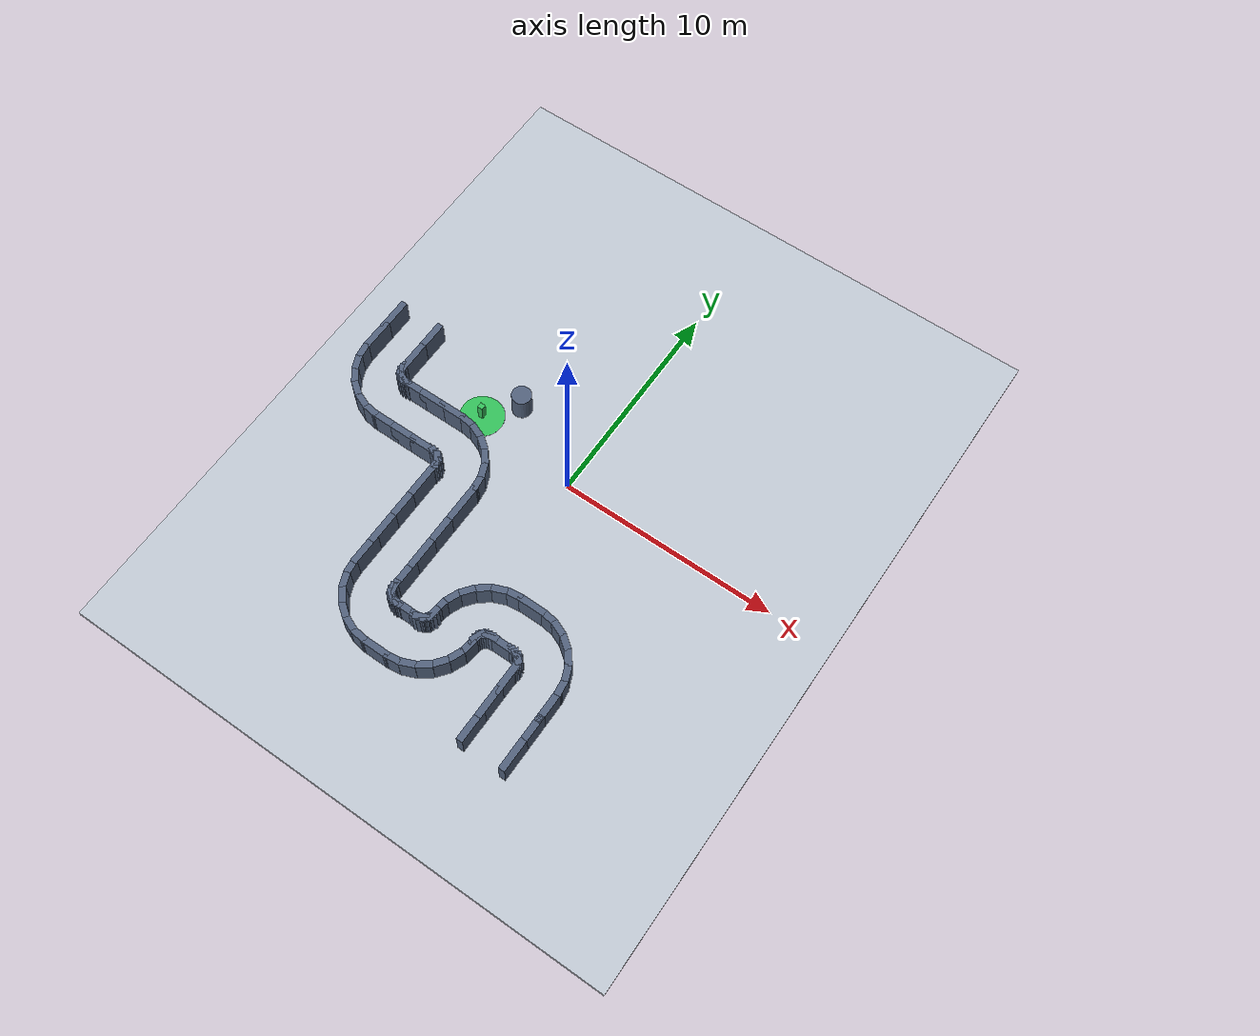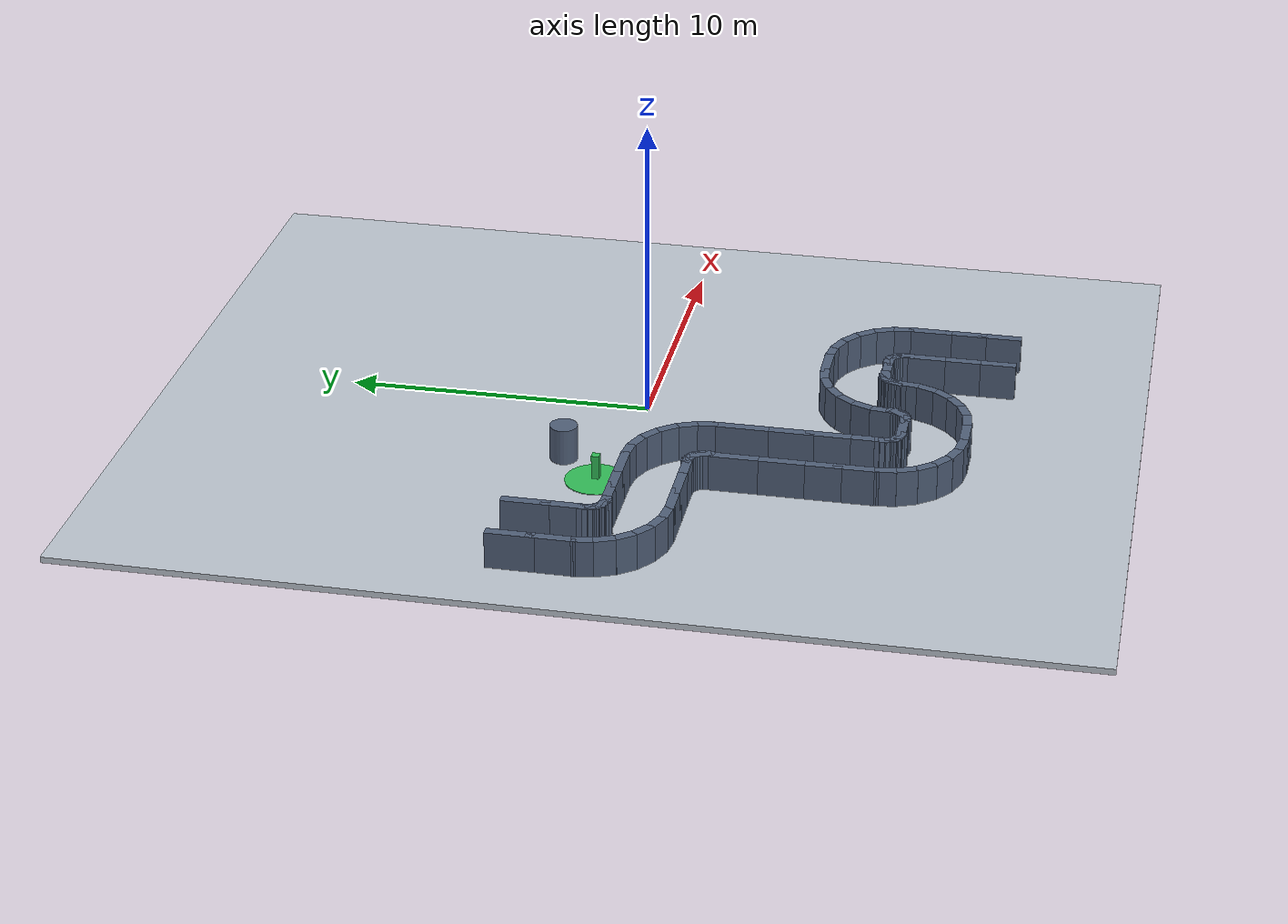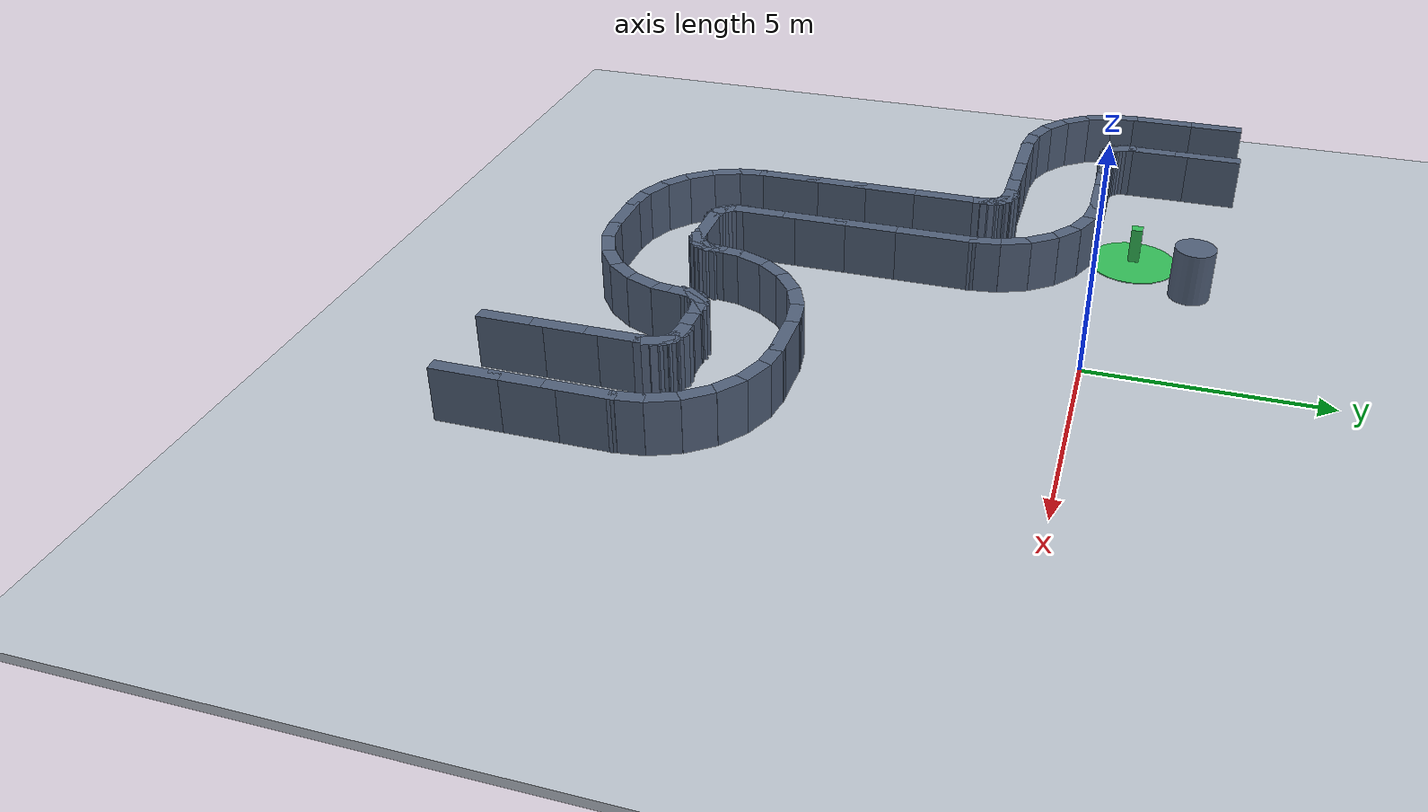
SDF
<sdf version="1.6">
 <world name="merged_maze">
  <model name="ground_plane">
   <static>true</static>
   <pose>0 0 -0.1 0 0 0</pose>
   <link name="link">
    <collision name="collision">
     <geometry><box><size>25.9198 32.2599 0.2</size></box></geometry>
     <surface><friction><ode><mu>1</mu><mu2>1</mu2></ode></friction></surface>
    </collision>
    <visual name="visual">
     <geometry><box><size>25.9198 32.2599 0.2</size></box></geometry>
     <material><ambient>0.75 0.78 0.82 1</ambient><diffuse>0.75 0.78 0.82 1</diffuse></material>
    </visual>
   </link>
  </model>
  <model name="maze_6_L_big">
   <static>true</static>
   <link name="w00">
    <pose>-8.8 2.0451 0.6 0 0 -1.5708</pose>
    <collision name="collision"><geometry><box><size>1.55 0.3 1.2</size></box></geometry></collision>
    <visual name="visual">
     <geometry><box><size>1.55 0.3 1.2</size></box></geometry>
     <material><ambient>0.32 0.38 0.48 1</ambient><diffuse>0.32 0.38 0.48 1</diffuse></material>
    </visual>
   </link>
   <link name="w01">
    <pose>-10.8 2.0451 0.6 0 0 -1.5708</pose>
    <collision name="collision"><geometry><box><size>1.55 0.3 1.2</size></box></geometry></collision>
    <visual name="visual">
     <geometry><box><size>1.55 0.3 1.2</size></box></geometry>
     <material><ambient>0.32 0.38 0.48 1</ambient><diffuse>0.32 0.38 0.48 1</diffuse></material>
    </visual>
   </link>
   <link name="w02">
    <pose>-8.8 0.7951 0.6 0 0 -1.5708</pose>
    <collision name="collision"><geometry><box><size>1.55 0.3 1.2</size></box></geometry></collision>
    <visual name="visual">
     <geometry><box><size>1.55 0.3 1.2</size></box></geometry>
     <material><ambient>0.32 0.38 0.48 1</ambient><diffuse>0.32 0.38 0.48 1</diffuse></material>
    </visual>
   </link>
   <link name="w03">
    <pose>-10.8 0.7951 0.6 0 0 -1.5708</pose>
    <collision name="collision"><geometry><box><size>1.55 0.3 1.2</size></box></geometry></collision>
    <visual name="visual">
     <geometry><box><size>1.55 0.3 1.2</size></box></geometry>
     <material><ambient>0.32 0.38 0.48 1</ambient><diffuse>0.32 0.38 0.48 1</diffuse></material>
    </visual>
   </link>
   <link name="w04">
    <pose>-8.783 0.1061 0.6 0 0 -1.4399</pose>
    <collision name="collision"><geometry><box><size>0.692 0.3 1.2</size></box></geometry></collision>
    <visual name="visual">
     <geometry><box><size>0.692 0.3 1.2</size></box></geometry>
     <material><ambient>0.32 0.38 0.48 1</ambient><diffuse>0.32 0.38 0.48 1</diffuse></material>
    </visual>
   </link>
   <link name="w05">
    <pose>-10.766 -0.1549 0.6 0 0 -1.4399</pose>
    <collision name="collision"><geometry><box><size>0.692 0.3 1.2</size></box></geometry></collision>
    <visual name="visual">
     <geometry><box><size>0.692 0.3 1.2</size></box></geometry>
     <material><ambient>0.32 0.38 0.48 1</ambient><diffuse>0.32 0.38 0.48 1</diffuse></material>
    </visual>
   </link>
   <link name="w06">
    <pose>-8.75 -0.0159 0.6 0 0 -1.1781</pose>
    <collision name="collision"><geometry><box><size>0.692 0.3 1.2</size></box></geometry></collision>
    <visual name="visual">
     <geometry><box><size>0.692 0.3 1.2</size></box></geometry>
     <material><ambient>0.32 0.38 0.48 1</ambient><diffuse>0.32 0.38 0.48 1</diffuse></material>
    </visual>
   </link>
   <link name="w07">
    <pose>-10.598 -0.7819 0.6 0 0 -1.1781</pose>
    <collision name="collision"><geometry><box><size>0.692 0.3 1.2</size></box></geometry></collision>
    <visual name="visual">
     <geometry><box><size>0.692 0.3 1.2</size></box></geometry>
     <material><ambient>0.32 0.38 0.48 1</ambient><diffuse>0.32 0.38 0.48 1</diffuse></material>
    </visual>
   </link>
   <link name="w08">
    <pose>-8.686 -0.1269 0.6 0 0 -0.9163</pose>
    <collision name="collision"><geometry><box><size>0.692 0.3 1.2</size></box></geometry></collision>
    <visual name="visual">
     <geometry><box><size>0.692 0.3 1.2</size></box></geometry>
     <material><ambient>0.32 0.38 0.48 1</ambient><diffuse>0.32 0.38 0.48 1</diffuse></material>
    </visual>
   </link>
   <link name="w09">
    <pose>-10.273 -1.3439 0.6 0 0 -0.9163</pose>
    <collision name="collision"><geometry><box><size>0.692 0.3 1.2</size></box></geometry></collision>
    <visual name="visual">
     <geometry><box><size>0.692 0.3 1.2</size></box></geometry>
     <material><ambient>0.32 0.38 0.48 1</ambient><diffuse>0.32 0.38 0.48 1</diffuse></material>
    </visual>
   </link>
   <link name="w10">
    <pose>-8.597 -0.2159 0.6 0 0 -0.6545</pose>
    <collision name="collision"><geometry><box><size>0.692 0.3 1.2</size></box></geometry></collision>
    <visual name="visual">
     <geometry><box><size>0.692 0.3 1.2</size></box></geometry>
     <material><ambient>0.32 0.38 0.48 1</ambient><diffuse>0.32 0.38 0.48 1</diffuse></material>
    </visual>
   </link>
   <link name="w11">
    <pose>-9.814 -1.8029 0.6 0 0 -0.6545</pose>
    <collision name="collision"><geometry><box><size>0.692 0.3 1.2</size></box></geometry></collision>
    <visual name="visual">
     <geometry><box><size>0.692 0.3 1.2</size></box></geometry>
     <material><ambient>0.32 0.38 0.48 1</ambient><diffuse>0.32 0.38 0.48 1</diffuse></material>
    </visual>
   </link>
   <link name="w12">
    <pose>-8.486 -0.2799 0.6 0 0 -0.3927</pose>
    <collision name="collision"><geometry><box><size>0.692 0.3 1.2</size></box></geometry></collision>
    <visual name="visual">
     <geometry><box><size>0.692 0.3 1.2</size></box></geometry>
     <material><ambient>0.32 0.38 0.48 1</ambient><diffuse>0.32 0.38 0.48 1</diffuse></material>
    </visual>
   </link>
   <link name="w13">
    <pose>-9.252 -2.1279 0.6 0 0 -0.3927</pose>
    <collision name="collision"><geometry><box><size>0.692 0.3 1.2</size></box></geometry></collision>
    <visual name="visual">
     <geometry><box><size>0.692 0.3 1.2</size></box></geometry>
     <material><ambient>0.32 0.38 0.48 1</ambient><diffuse>0.32 0.38 0.48 1</diffuse></material>
    </visual>
   </link>
   <link name="w14">
    <pose>-8.364 -0.3129 0.6 0 0 -0.1309</pose>
    <collision name="collision"><geometry><box><size>0.692 0.3 1.2</size></box></geometry></collision>
    <visual name="visual">
     <geometry><box><size>0.692 0.3 1.2</size></box></geometry>
     <material><ambient>0.32 0.38 0.48 1</ambient><diffuse>0.32 0.38 0.48 1</diffuse></material>
    </visual>
   </link>
   <link name="w15">
    <pose>-8.625 -2.2959 0.6 0 0 -0.1309</pose>
    <collision name="collision"><geometry><box><size>0.692 0.3 1.2</size></box></geometry></collision>
    <visual name="visual">
     <geometry><box><size>0.692 0.3 1.2</size></box></geometry>
     <material><ambient>0.32 0.38 0.48 1</ambient><diffuse>0.32 0.38 0.48 1</diffuse></material>
    </visual>
   </link>
   <link name="w16">
    <pose>-7.8 -0.3299 0.6 0 0 0</pose>
    <collision name="collision"><geometry><box><size>1.3 0.3 1.2</size></box></geometry></collision>
    <visual name="visual">
     <geometry><box><size>1.3 0.3 1.2</size></box></geometry>
     <material><ambient>0.32 0.38 0.48 1</ambient><diffuse>0.32 0.38 0.48 1</diffuse></material>
    </visual>
   </link>
   <link name="w17">
    <pose>-7.8 -2.3299 0.6 0 0 0</pose>
    <collision name="collision"><geometry><box><size>1.3 0.3 1.2</size></box></geometry></collision>
    <visual name="visual">
     <geometry><box><size>1.3 0.3 1.2</size></box></geometry>
     <material><ambient>0.32 0.38 0.48 1</ambient><diffuse>0.32 0.38 0.48 1</diffuse></material>
    </visual>
   </link>
   <link name="w18">
    <pose>-6.8 -0.3299 0.6 0 0 0</pose>
    <collision name="collision"><geometry><box><size>1.3 0.3 1.2</size></box></geometry></collision>
    <visual name="visual">
     <geometry><box><size>1.3 0.3 1.2</size></box></geometry>
     <material><ambient>0.32 0.38 0.48 1</ambient><diffuse>0.32 0.38 0.48 1</diffuse></material>
    </visual>
   </link>
   <link name="w19">
    <pose>-6.8 -2.3299 0.6 0 0 0</pose>
    <collision name="collision"><geometry><box><size>1.3 0.3 1.2</size></box></geometry></collision>
    <visual name="visual">
     <geometry><box><size>1.3 0.3 1.2</size></box></geometry>
     <material><ambient>0.32 0.38 0.48 1</ambient><diffuse>0.32 0.38 0.48 1</diffuse></material>
    </visual>
   </link>
   <link name="w20">
    <pose>-5.8 -0.3299 0.6 0 0 0</pose>
    <collision name="collision"><geometry><box><size>1.3 0.3 1.2</size></box></geometry></collision>
    <visual name="visual">
     <geometry><box><size>1.3 0.3 1.2</size></box></geometry>
     <material><ambient>0.32 0.38 0.48 1</ambient><diffuse>0.32 0.38 0.48 1</diffuse></material>
    </visual>
   </link>
   <link name="w21">
    <pose>-5.8 -2.3299 0.6 0 0 0</pose>
    <collision name="collision"><geometry><box><size>1.3 0.3 1.2</size></box></geometry></collision>
    <visual name="visual">
     <geometry><box><size>1.3 0.3 1.2</size></box></geometry>
     <material><ambient>0.32 0.38 0.48 1</ambient><diffuse>0.32 0.38 0.48 1</diffuse></material>
    </visual>
   </link>
   <link name="w22">
    <pose>-4.975 -0.3639 0.6 0 0 -0.1309</pose>
    <collision name="collision"><geometry><box><size>0.692 0.3 1.2</size></box></geometry></collision>
    <visual name="visual">
     <geometry><box><size>0.692 0.3 1.2</size></box></geometry>
     <material><ambient>0.32 0.38 0.48 1</ambient><diffuse>0.32 0.38 0.48 1</diffuse></material>
    </visual>
   </link>
   <link name="w23">
    <pose>-5.236 -2.3469 0.6 0 0 -0.1309</pose>
    <collision name="collision"><geometry><box><size>0.692 0.3 1.2</size></box></geometry></collision>
    <visual name="visual">
     <geometry><box><size>0.692 0.3 1.2</size></box></geometry>
     <material><ambient>0.32 0.38 0.48 1</ambient><diffuse>0.32 0.38 0.48 1</diffuse></material>
    </visual>
   </link>
   <link name="w24">
    <pose>-4.348 -0.5319 0.6 0 0 -0.3927</pose>
    <collision name="collision"><geometry><box><size>0.692 0.3 1.2</size></box></geometry></collision>
    <visual name="visual">
     <geometry><box><size>0.692 0.3 1.2</size></box></geometry>
     <material><ambient>0.32 0.38 0.48 1</ambient><diffuse>0.32 0.38 0.48 1</diffuse></material>
    </visual>
   </link>
   <link name="w25">
    <pose>-5.114 -2.3799 0.6 0 0 -0.3927</pose>
    <collision name="collision"><geometry><box><size>0.692 0.3 1.2</size></box></geometry></collision>
    <visual name="visual">
     <geometry><box><size>0.692 0.3 1.2</size></box></geometry>
     <material><ambient>0.32 0.38 0.48 1</ambient><diffuse>0.32 0.38 0.48 1</diffuse></material>
    </visual>
   </link>
   <link name="w26">
    <pose>-3.786 -0.8569 0.6 0 0 -0.6545</pose>
    <collision name="collision"><geometry><box><size>0.692 0.3 1.2</size></box></geometry></collision>
    <visual name="visual">
     <geometry><box><size>0.692 0.3 1.2</size></box></geometry>
     <material><ambient>0.32 0.38 0.48 1</ambient><diffuse>0.32 0.38 0.48 1</diffuse></material>
    </visual>
   </link>
   <link name="w27">
    <pose>-5.003 -2.4439 0.6 0 0 -0.6545</pose>
    <collision name="collision"><geometry><box><size>0.692 0.3 1.2</size></box></geometry></collision>
    <visual name="visual">
     <geometry><box><size>0.692 0.3 1.2</size></box></geometry>
     <material><ambient>0.32 0.38 0.48 1</ambient><diffuse>0.32 0.38 0.48 1</diffuse></material>
    </visual>
   </link>
   <link name="w28">
    <pose>-3.327 -1.3159 0.6 0 0 -0.9163</pose>
    <collision name="collision"><geometry><box><size>0.692 0.3 1.2</size></box></geometry></collision>
    <visual name="visual">
     <geometry><box><size>0.692 0.3 1.2</size></box></geometry>
     <material><ambient>0.32 0.38 0.48 1</ambient><diffuse>0.32 0.38 0.48 1</diffuse></material>
    </visual>
   </link>
   <link name="w29">
    <pose>-4.914 -2.5329 0.6 0 0 -0.9163</pose>
    <collision name="collision"><geometry><box><size>0.692 0.3 1.2</size></box></geometry></collision>
    <visual name="visual">
     <geometry><box><size>0.692 0.3 1.2</size></box></geometry>
     <material><ambient>0.32 0.38 0.48 1</ambient><diffuse>0.32 0.38 0.48 1</diffuse></material>
    </visual>
   </link>
   <link name="w30">
    <pose>-3.002 -1.8779 0.6 0 0 -1.1781</pose>
    <collision name="collision"><geometry><box><size>0.692 0.3 1.2</size></box></geometry></collision>
    <visual name="visual">
     <geometry><box><size>0.692 0.3 1.2</size></box></geometry>
     <material><ambient>0.32 0.38 0.48 1</ambient><diffuse>0.32 0.38 0.48 1</diffuse></material>
    </visual>
   </link>
   <link name="w31">
    <pose>-4.85 -2.6439 0.6 0 0 -1.1781</pose>
    <collision name="collision"><geometry><box><size>0.692 0.3 1.2</size></box></geometry></collision>
    <visual name="visual">
     <geometry><box><size>0.692 0.3 1.2</size></box></geometry>
     <material><ambient>0.32 0.38 0.48 1</ambient><diffuse>0.32 0.38 0.48 1</diffuse></material>
    </visual>
   </link>
   <link name="w32">
    <pose>-2.834 -2.5049 0.6 0 0 -1.4399</pose>
    <collision name="collision"><geometry><box><size>0.692 0.3 1.2</size></box></geometry></collision>
    <visual name="visual">
     <geometry><box><size>0.692 0.3 1.2</size></box></geometry>
     <material><ambient>0.32 0.38 0.48 1</ambient><diffuse>0.32 0.38 0.48 1</diffuse></material>
    </visual>
   </link>
   <link name="w33">
    <pose>-4.817 -2.7659 0.6 0 0 -1.4399</pose>
    <collision name="collision"><geometry><box><size>0.692 0.3 1.2</size></box></geometry></collision>
    <visual name="visual">
     <geometry><box><size>0.692 0.3 1.2</size></box></geometry>
     <material><ambient>0.32 0.38 0.48 1</ambient><diffuse>0.32 0.38 0.48 1</diffuse></material>
    </visual>
   </link>
   <link name="w34">
    <pose>-2.8 -3.5799 0.6 0 0 -1.5708</pose>
    <collision name="collision"><geometry><box><size>1.8 0.3 1.2</size></box></geometry></collision>
    <visual name="visual">
     <geometry><box><size>1.8 0.3 1.2</size></box></geometry>
     <material><ambient>0.32 0.38 0.48 1</ambient><diffuse>0.32 0.38 0.48 1</diffuse></material>
    </visual>
   </link>
   <link name="w35">
    <pose>-4.8 -3.5799 0.6 0 0 -1.5708</pose>
    <collision name="collision"><geometry><box><size>1.8 0.3 1.2</size></box></geometry></collision>
    <visual name="visual">
     <geometry><box><size>1.8 0.3 1.2</size></box></geometry>
     <material><ambient>0.32 0.38 0.48 1</ambient><diffuse>0.32 0.38 0.48 1</diffuse></material>
    </visual>
   </link>
  </model>
  <model name="maze_7_S">
   <static>true</static>
   <link name="w00">
    <pose>-2.8 -5.2129 0.6 0 0 -1.5708</pose>
    <collision name="collision"><geometry><box><size>1.467 0.3 1.2</size></box></geometry></collision>
    <visual name="visual">
     <geometry><box><size>1.467 0.3 1.2</size></box></geometry>
     <material><ambient>0.32 0.38 0.48 1</ambient><diffuse>0.32 0.38 0.48 1</diffuse></material>
    </visual>
   </link>
   <link name="w01">
    <pose>-4.8 -5.2129 0.6 0 0 -1.5708</pose>
    <collision name="collision"><geometry><box><size>1.467 0.3 1.2</size></box></geometry></collision>
    <visual name="visual">
     <geometry><box><size>1.467 0.3 1.2</size></box></geometry>
     <material><ambient>0.32 0.38 0.48 1</ambient><diffuse>0.32 0.38 0.48 1</diffuse></material>
    </visual>
   </link>
   <link name="w02">
    <pose>-2.8 -6.3799 0.6 0 0 -1.5708</pose>
    <collision name="collision"><geometry><box><size>1.467 0.3 1.2</size></box></geometry></collision>
    <visual name="visual">
     <geometry><box><size>1.467 0.3 1.2</size></box></geometry>
     <material><ambient>0.32 0.38 0.48 1</ambient><diffuse>0.32 0.38 0.48 1</diffuse></material>
    </visual>
   </link>
   <link name="w03">
    <pose>-4.8 -6.3799 0.6 0 0 -1.5708</pose>
    <collision name="collision"><geometry><box><size>1.467 0.3 1.2</size></box></geometry></collision>
    <visual name="visual">
     <geometry><box><size>1.467 0.3 1.2</size></box></geometry>
     <material><ambient>0.32 0.38 0.48 1</ambient><diffuse>0.32 0.38 0.48 1</diffuse></material>
    </visual>
   </link>
   <link name="w04">
    <pose>-2.8 -7.5469 0.6 0 0 -1.5708</pose>
    <collision name="collision"><geometry><box><size>1.467 0.3 1.2</size></box></geometry></collision>
    <visual name="visual">
     <geometry><box><size>1.467 0.3 1.2</size></box></geometry>
     <material><ambient>0.32 0.38 0.48 1</ambient><diffuse>0.32 0.38 0.48 1</diffuse></material>
    </visual>
   </link>
   <link name="w05">
    <pose>-4.8 -7.5469 0.6 0 0 -1.5708</pose>
    <collision name="collision"><geometry><box><size>1.467 0.3 1.2</size></box></geometry></collision>
    <visual name="visual">
     <geometry><box><size>1.467 0.3 1.2</size></box></geometry>
     <material><ambient>0.32 0.38 0.48 1</ambient><diffuse>0.32 0.38 0.48 1</diffuse></material>
    </visual>
   </link>
   <link name="w06">
    <pose>-2.783 -8.1939 0.6 0 0 -1.4399</pose>
    <collision name="collision"><geometry><box><size>0.692 0.3 1.2</size></box></geometry></collision>
    <visual name="visual">
     <geometry><box><size>0.692 0.3 1.2</size></box></geometry>
     <material><ambient>0.32 0.38 0.48 1</ambient><diffuse>0.32 0.38 0.48 1</diffuse></material>
    </visual>
   </link>
   <link name="w07">
    <pose>-4.766 -8.4549 0.6 0 0 -1.4399</pose>
    <collision name="collision"><geometry><box><size>0.692 0.3 1.2</size></box></geometry></collision>
    <visual name="visual">
     <geometry><box><size>0.692 0.3 1.2</size></box></geometry>
     <material><ambient>0.32 0.38 0.48 1</ambient><diffuse>0.32 0.38 0.48 1</diffuse></material>
    </visual>
   </link>
   <link name="w08">
    <pose>-2.75 -8.3159 0.6 0 0 -1.1781</pose>
    <collision name="collision"><geometry><box><size>0.692 0.3 1.2</size></box></geometry></collision>
    <visual name="visual">
     <geometry><box><size>0.692 0.3 1.2</size></box></geometry>
     <material><ambient>0.32 0.38 0.48 1</ambient><diffuse>0.32 0.38 0.48 1</diffuse></material>
    </visual>
   </link>
   <link name="w09">
    <pose>-4.598 -9.0819 0.6 0 0 -1.1781</pose>
    <collision name="collision"><geometry><box><size>0.692 0.3 1.2</size></box></geometry></collision>
    <visual name="visual">
     <geometry><box><size>0.692 0.3 1.2</size></box></geometry>
     <material><ambient>0.32 0.38 0.48 1</ambient><diffuse>0.32 0.38 0.48 1</diffuse></material>
    </visual>
   </link>
   <link name="w10">
    <pose>-2.686 -8.4269 0.6 0 0 -0.9163</pose>
    <collision name="collision"><geometry><box><size>0.692 0.3 1.2</size></box></geometry></collision>
    <visual name="visual">
     <geometry><box><size>0.692 0.3 1.2</size></box></geometry>
     <material><ambient>0.32 0.38 0.48 1</ambient><diffuse>0.32 0.38 0.48 1</diffuse></material>
    </visual>
   </link>
   <link name="w11">
    <pose>-4.273 -9.6439 0.6 0 0 -0.9163</pose>
    <collision name="collision"><geometry><box><size>0.692 0.3 1.2</size></box></geometry></collision>
    <visual name="visual">
     <geometry><box><size>0.692 0.3 1.2</size></box></geometry>
     <material><ambient>0.32 0.38 0.48 1</ambient><diffuse>0.32 0.38 0.48 1</diffuse></material>
    </visual>
   </link>
   <link name="w12">
    <pose>-2.597 -8.5159 0.6 0 0 -0.6545</pose>
    <collision name="collision"><geometry><box><size>0.692 0.3 1.2</size></box></geometry></collision>
    <visual name="visual">
     <geometry><box><size>0.692 0.3 1.2</size></box></geometry>
     <material><ambient>0.32 0.38 0.48 1</ambient><diffuse>0.32 0.38 0.48 1</diffuse></material>
    </visual>
   </link>
   <link name="w13">
    <pose>-3.814 -10.1029 0.6 0 0 -0.6545</pose>
    <collision name="collision"><geometry><box><size>0.692 0.3 1.2</size></box></geometry></collision>
    <visual name="visual">
     <geometry><box><size>0.692 0.3 1.2</size></box></geometry>
     <material><ambient>0.32 0.38 0.48 1</ambient><diffuse>0.32 0.38 0.48 1</diffuse></material>
    </visual>
   </link>
   <link name="w14">
    <pose>-2.486 -8.5799 0.6 0 0 -0.3927</pose>
    <collision name="collision"><geometry><box><size>0.692 0.3 1.2</size></box></geometry></collision>
    <visual name="visual">
     <geometry><box><size>0.692 0.3 1.2</size></box></geometry>
     <material><ambient>0.32 0.38 0.48 1</ambient><diffuse>0.32 0.38 0.48 1</diffuse></material>
    </visual>
   </link>
   <link name="w15">
    <pose>-3.252 -10.4279 0.6 0 0 -0.3927</pose>
    <collision name="collision"><geometry><box><size>0.692 0.3 1.2</size></box></geometry></collision>
    <visual name="visual">
     <geometry><box><size>0.692 0.3 1.2</size></box></geometry>
     <material><ambient>0.32 0.38 0.48 1</ambient><diffuse>0.32 0.38 0.48 1</diffuse></material>
    </visual>
   </link>
   <link name="w16">
    <pose>-2.364 -8.6129 0.6 0 0 -0.1309</pose>
    <collision name="collision"><geometry><box><size>0.692 0.3 1.2</size></box></geometry></collision>
    <visual name="visual">
     <geometry><box><size>0.692 0.3 1.2</size></box></geometry>
     <material><ambient>0.32 0.38 0.48 1</ambient><diffuse>0.32 0.38 0.48 1</diffuse></material>
    </visual>
   </link>
   <link name="w17">
    <pose>-2.625 -10.5959 0.6 0 0 -0.1309</pose>
    <collision name="collision"><geometry><box><size>0.692 0.3 1.2</size></box></geometry></collision>
    <visual name="visual">
     <geometry><box><size>0.692 0.3 1.2</size></box></geometry>
     <material><ambient>0.32 0.38 0.48 1</ambient><diffuse>0.32 0.38 0.48 1</diffuse></material>
    </visual>
   </link>
   <link name="w18">
    <pose>-1.8 -8.6299 0.6 0 0 0</pose>
    <collision name="collision"><geometry><box><size>1.3 0.3 1.2</size></box></geometry></collision>
    <visual name="visual">
     <geometry><box><size>1.3 0.3 1.2</size></box></geometry>
     <material><ambient>0.32 0.38 0.48 1</ambient><diffuse>0.32 0.38 0.48 1</diffuse></material>
    </visual>
   </link>
   <link name="w19">
    <pose>-1.8 -10.6299 0.6 0 0 0</pose>
    <collision name="collision"><geometry><box><size>1.3 0.3 1.2</size></box></geometry></collision>
    <visual name="visual">
     <geometry><box><size>1.3 0.3 1.2</size></box></geometry>
     <material><ambient>0.32 0.38 0.48 1</ambient><diffuse>0.32 0.38 0.48 1</diffuse></material>
    </visual>
   </link>
   <link name="w20">
    <pose>-1.236 -8.6129 0.6 0 0 0.1309</pose>
    <collision name="collision"><geometry><box><size>0.692 0.3 1.2</size></box></geometry></collision>
    <visual name="visual">
     <geometry><box><size>0.692 0.3 1.2</size></box></geometry>
     <material><ambient>0.32 0.38 0.48 1</ambient><diffuse>0.32 0.38 0.48 1</diffuse></material>
    </visual>
   </link>
   <link name="w21">
    <pose>-0.975 -10.5959 0.6 0 0 0.1309</pose>
    <collision name="collision"><geometry><box><size>0.692 0.3 1.2</size></box></geometry></collision>
    <visual name="visual">
     <geometry><box><size>0.692 0.3 1.2</size></box></geometry>
     <material><ambient>0.32 0.38 0.48 1</ambient><diffuse>0.32 0.38 0.48 1</diffuse></material>
    </visual>
   </link>
   <link name="w22">
    <pose>-1.114 -8.5799 0.6 0 0 0.3927</pose>
    <collision name="collision"><geometry><box><size>0.692 0.3 1.2</size></box></geometry></collision>
    <visual name="visual">
     <geometry><box><size>0.692 0.3 1.2</size></box></geometry>
     <material><ambient>0.32 0.38 0.48 1</ambient><diffuse>0.32 0.38 0.48 1</diffuse></material>
    </visual>
   </link>
   <link name="w23">
    <pose>-0.348 -10.4279 0.6 0 0 0.3927</pose>
    <collision name="collision"><geometry><box><size>0.692 0.3 1.2</size></box></geometry></collision>
    <visual name="visual">
     <geometry><box><size>0.692 0.3 1.2</size></box></geometry>
     <material><ambient>0.32 0.38 0.48 1</ambient><diffuse>0.32 0.38 0.48 1</diffuse></material>
    </visual>
   </link>
   <link name="w24">
    <pose>-1.003 -8.5159 0.6 0 0 0.6545</pose>
    <collision name="collision"><geometry><box><size>0.692 0.3 1.2</size></box></geometry></collision>
    <visual name="visual">
     <geometry><box><size>0.692 0.3 1.2</size></box></geometry>
     <material><ambient>0.32 0.38 0.48 1</ambient><diffuse>0.32 0.38 0.48 1</diffuse></material>
    </visual>
   </link>
   <link name="w25">
    <pose>0.214 -10.1029 0.6 0 0 0.6545</pose>
    <collision name="collision"><geometry><box><size>0.692 0.3 1.2</size></box></geometry></collision>
    <visual name="visual">
     <geometry><box><size>0.692 0.3 1.2</size></box></geometry>
     <material><ambient>0.32 0.38 0.48 1</ambient><diffuse>0.32 0.38 0.48 1</diffuse></material>
    </visual>
   </link>
   <link name="w26">
    <pose>-0.914 -8.4269 0.6 0 0 0.9163</pose>
    <collision name="collision"><geometry><box><size>0.692 0.3 1.2</size></box></geometry></collision>
    <visual name="visual">
     <geometry><box><size>0.692 0.3 1.2</size></box></geometry>
     <material><ambient>0.32 0.38 0.48 1</ambient><diffuse>0.32 0.38 0.48 1</diffuse></material>
    </visual>
   </link>
   <link name="w27">
    <pose>0.673 -9.6439 0.6 0 0 0.9163</pose>
    <collision name="collision"><geometry><box><size>0.692 0.3 1.2</size></box></geometry></collision>
    <visual name="visual">
     <geometry><box><size>0.692 0.3 1.2</size></box></geometry>
     <material><ambient>0.32 0.38 0.48 1</ambient><diffuse>0.32 0.38 0.48 1</diffuse></material>
    </visual>
   </link>
   <link name="w28">
    <pose>-0.85 -8.3159 0.6 0 0 1.1781</pose>
    <collision name="collision"><geometry><box><size>0.692 0.3 1.2</size></box></geometry></collision>
    <visual name="visual">
     <geometry><box><size>0.692 0.3 1.2</size></box></geometry>
     <material><ambient>0.32 0.38 0.48 1</ambient><diffuse>0.32 0.38 0.48 1</diffuse></material>
    </visual>
   </link>
   <link name="w29">
    <pose>0.998 -9.0819 0.6 0 0 1.1781</pose>
    <collision name="collision"><geometry><box><size>0.692 0.3 1.2</size></box></geometry></collision>
    <visual name="visual">
     <geometry><box><size>0.692 0.3 1.2</size></box></geometry>
     <material><ambient>0.32 0.38 0.48 1</ambient><diffuse>0.32 0.38 0.48 1</diffuse></material>
    </visual>
   </link>
   <link name="w30">
    <pose>-0.817 -8.1939 0.6 0 0 1.4399</pose>
    <collision name="collision"><geometry><box><size>0.692 0.3 1.2</size></box></geometry></collision>
    <visual name="visual">
     <geometry><box><size>0.692 0.3 1.2</size></box></geometry>
     <material><ambient>0.32 0.38 0.48 1</ambient><diffuse>0.32 0.38 0.48 1</diffuse></material>
    </visual>
   </link>
   <link name="w31">
    <pose>1.166 -8.4549 0.6 0 0 1.4399</pose>
    <collision name="collision"><geometry><box><size>0.692 0.3 1.2</size></box></geometry></collision>
    <visual name="visual">
     <geometry><box><size>0.692 0.3 1.2</size></box></geometry>
     <material><ambient>0.32 0.38 0.48 1</ambient><diffuse>0.32 0.38 0.48 1</diffuse></material>
    </visual>
   </link>
   <link name="w32">
    <pose>-0.766 -7.8049 0.6 0 0 1.4399</pose>
    <collision name="collision"><geometry><box><size>0.692 0.3 1.2</size></box></geometry></collision>
    <visual name="visual">
     <geometry><box><size>0.692 0.3 1.2</size></box></geometry>
     <material><ambient>0.32 0.38 0.48 1</ambient><diffuse>0.32 0.38 0.48 1</diffuse></material>
    </visual>
   </link>
   <link name="w33">
    <pose>1.217 -8.0659 0.6 0 0 1.4399</pose>
    <collision name="collision"><geometry><box><size>0.692 0.3 1.2</size></box></geometry></collision>
    <visual name="visual">
     <geometry><box><size>0.692 0.3 1.2</size></box></geometry>
     <material><ambient>0.32 0.38 0.48 1</ambient><diffuse>0.32 0.38 0.48 1</diffuse></material>
    </visual>
   </link>
   <link name="w34">
    <pose>-0.598 -7.1779 0.6 0 0 1.1781</pose>
    <collision name="collision"><geometry><box><size>0.692 0.3 1.2</size></box></geometry></collision>
    <visual name="visual">
     <geometry><box><size>0.692 0.3 1.2</size></box></geometry>
     <material><ambient>0.32 0.38 0.48 1</ambient><diffuse>0.32 0.38 0.48 1</diffuse></material>
    </visual>
   </link>
   <link name="w35">
    <pose>1.25 -7.9439 0.6 0 0 1.1781</pose>
    <collision name="collision"><geometry><box><size>0.692 0.3 1.2</size></box></geometry></collision>
    <visual name="visual">
     <geometry><box><size>0.692 0.3 1.2</size></box></geometry>
     <material><ambient>0.32 0.38 0.48 1</ambient><diffuse>0.32 0.38 0.48 1</diffuse></material>
    </visual>
   </link>
   <link name="w36">
    <pose>-0.273 -6.6159 0.6 0 0 0.9163</pose>
    <collision name="collision"><geometry><box><size>0.692 0.3 1.2</size></box></geometry></collision>
    <visual name="visual">
     <geometry><box><size>0.692 0.3 1.2</size></box></geometry>
     <material><ambient>0.32 0.38 0.48 1</ambient><diffuse>0.32 0.38 0.48 1</diffuse></material>
    </visual>
   </link>
   <link name="w37">
    <pose>1.314 -7.8329 0.6 0 0 0.9163</pose>
    <collision name="collision"><geometry><box><size>0.692 0.3 1.2</size></box></geometry></collision>
    <visual name="visual">
     <geometry><box><size>0.692 0.3 1.2</size></box></geometry>
     <material><ambient>0.32 0.38 0.48 1</ambient><diffuse>0.32 0.38 0.48 1</diffuse></material>
    </visual>
   </link>
   <link name="w38">
    <pose>0.186 -6.1569 0.6 0 0 0.6545</pose>
    <collision name="collision"><geometry><box><size>0.692 0.3 1.2</size></box></geometry></collision>
    <visual name="visual">
     <geometry><box><size>0.692 0.3 1.2</size></box></geometry>
     <material><ambient>0.32 0.38 0.48 1</ambient><diffuse>0.32 0.38 0.48 1</diffuse></material>
    </visual>
   </link>
   <link name="w39">
    <pose>1.403 -7.7439 0.6 0 0 0.6545</pose>
    <collision name="collision"><geometry><box><size>0.692 0.3 1.2</size></box></geometry></collision>
    <visual name="visual">
     <geometry><box><size>0.692 0.3 1.2</size></box></geometry>
     <material><ambient>0.32 0.38 0.48 1</ambient><diffuse>0.32 0.38 0.48 1</diffuse></material>
    </visual>
   </link>
   <link name="w40">
    <pose>0.748 -5.8319 0.6 0 0 0.3927</pose>
    <collision name="collision"><geometry><box><size>0.692 0.3 1.2</size></box></geometry></collision>
    <visual name="visual">
     <geometry><box><size>0.692 0.3 1.2</size></box></geometry>
     <material><ambient>0.32 0.38 0.48 1</ambient><diffuse>0.32 0.38 0.48 1</diffuse></material>
    </visual>
   </link>
   <link name="w41">
    <pose>1.514 -7.6799 0.6 0 0 0.3927</pose>
    <collision name="collision"><geometry><box><size>0.692 0.3 1.2</size></box></geometry></collision>
    <visual name="visual">
     <geometry><box><size>0.692 0.3 1.2</size></box></geometry>
     <material><ambient>0.32 0.38 0.48 1</ambient><diffuse>0.32 0.38 0.48 1</diffuse></material>
    </visual>
   </link>
   <link name="w42">
    <pose>1.375 -5.6639 0.6 0 0 0.1309</pose>
    <collision name="collision"><geometry><box><size>0.692 0.3 1.2</size></box></geometry></collision>
    <visual name="visual">
     <geometry><box><size>0.692 0.3 1.2</size></box></geometry>
     <material><ambient>0.32 0.38 0.48 1</ambient><diffuse>0.32 0.38 0.48 1</diffuse></material>
    </visual>
   </link>
   <link name="w43">
    <pose>1.636 -7.6469 0.6 0 0 0.1309</pose>
    <collision name="collision"><geometry><box><size>0.692 0.3 1.2</size></box></geometry></collision>
    <visual name="visual">
     <geometry><box><size>0.692 0.3 1.2</size></box></geometry>
     <material><ambient>0.32 0.38 0.48 1</ambient><diffuse>0.32 0.38 0.48 1</diffuse></material>
    </visual>
   </link>
   <link name="w44">
    <pose>2.2 -5.6299 0.6 0 0 0</pose>
    <collision name="collision"><geometry><box><size>1.3 0.3 1.2</size></box></geometry></collision>
    <visual name="visual">
     <geometry><box><size>1.3 0.3 1.2</size></box></geometry>
     <material><ambient>0.32 0.38 0.48 1</ambient><diffuse>0.32 0.38 0.48 1</diffuse></material>
    </visual>
   </link>
   <link name="w45">
    <pose>2.2 -7.6299 0.6 0 0 0</pose>
    <collision name="collision"><geometry><box><size>1.3 0.3 1.2</size></box></geometry></collision>
    <visual name="visual">
     <geometry><box><size>1.3 0.3 1.2</size></box></geometry>
     <material><ambient>0.32 0.38 0.48 1</ambient><diffuse>0.32 0.38 0.48 1</diffuse></material>
    </visual>
   </link>
   <link name="w46">
    <pose>3.025 -5.6639 0.6 0 0 -0.1309</pose>
    <collision name="collision"><geometry><box><size>0.692 0.3 1.2</size></box></geometry></collision>
    <visual name="visual">
     <geometry><box><size>0.692 0.3 1.2</size></box></geometry>
     <material><ambient>0.32 0.38 0.48 1</ambient><diffuse>0.32 0.38 0.48 1</diffuse></material>
    </visual>
   </link>
   <link name="w47">
    <pose>2.764 -7.6469 0.6 0 0 -0.1309</pose>
    <collision name="collision"><geometry><box><size>0.692 0.3 1.2</size></box></geometry></collision>
    <visual name="visual">
     <geometry><box><size>0.692 0.3 1.2</size></box></geometry>
     <material><ambient>0.32 0.38 0.48 1</ambient><diffuse>0.32 0.38 0.48 1</diffuse></material>
    </visual>
   </link>
   <link name="w48">
    <pose>3.652 -5.8319 0.6 0 0 -0.3927</pose>
    <collision name="collision"><geometry><box><size>0.692 0.3 1.2</size></box></geometry></collision>
    <visual name="visual">
     <geometry><box><size>0.692 0.3 1.2</size></box></geometry>
     <material><ambient>0.32 0.38 0.48 1</ambient><diffuse>0.32 0.38 0.48 1</diffuse></material>
    </visual>
   </link>
   <link name="w49">
    <pose>2.886 -7.6799 0.6 0 0 -0.3927</pose>
    <collision name="collision"><geometry><box><size>0.692 0.3 1.2</size></box></geometry></collision>
    <visual name="visual">
     <geometry><box><size>0.692 0.3 1.2</size></box></geometry>
     <material><ambient>0.32 0.38 0.48 1</ambient><diffuse>0.32 0.38 0.48 1</diffuse></material>
    </visual>
   </link>
   <link name="w50">
    <pose>4.214 -6.1569 0.6 0 0 -0.6545</pose>
    <collision name="collision"><geometry><box><size>0.692 0.3 1.2</size></box></geometry></collision>
    <visual name="visual">
     <geometry><box><size>0.692 0.3 1.2</size></box></geometry>
     <material><ambient>0.32 0.38 0.48 1</ambient><diffuse>0.32 0.38 0.48 1</diffuse></material>
    </visual>
   </link>
   <link name="w51">
    <pose>2.997 -7.7439 0.6 0 0 -0.6545</pose>
    <collision name="collision"><geometry><box><size>0.692 0.3 1.2</size></box></geometry></collision>
    <visual name="visual">
     <geometry><box><size>0.692 0.3 1.2</size></box></geometry>
     <material><ambient>0.32 0.38 0.48 1</ambient><diffuse>0.32 0.38 0.48 1</diffuse></material>
    </visual>
   </link>
   <link name="w52">
    <pose>4.673 -6.6159 0.6 0 0 -0.9163</pose>
    <collision name="collision"><geometry><box><size>0.692 0.3 1.2</size></box></geometry></collision>
    <visual name="visual">
     <geometry><box><size>0.692 0.3 1.2</size></box></geometry>
     <material><ambient>0.32 0.38 0.48 1</ambient><diffuse>0.32 0.38 0.48 1</diffuse></material>
    </visual>
   </link>
   <link name="w53">
    <pose>3.086 -7.8329 0.6 0 0 -0.9163</pose>
    <collision name="collision"><geometry><box><size>0.692 0.3 1.2</size></box></geometry></collision>
    <visual name="visual">
     <geometry><box><size>0.692 0.3 1.2</size></box></geometry>
     <material><ambient>0.32 0.38 0.48 1</ambient><diffuse>0.32 0.38 0.48 1</diffuse></material>
    </visual>
   </link>
   <link name="w54">
    <pose>4.998 -7.1779 0.6 0 0 -1.1781</pose>
    <collision name="collision"><geometry><box><size>0.692 0.3 1.2</size></box></geometry></collision>
    <visual name="visual">
     <geometry><box><size>0.692 0.3 1.2</size></box></geometry>
     <material><ambient>0.32 0.38 0.48 1</ambient><diffuse>0.32 0.38 0.48 1</diffuse></material>
    </visual>
   </link>
   <link name="w55">
    <pose>3.15 -7.9439 0.6 0 0 -1.1781</pose>
    <collision name="collision"><geometry><box><size>0.692 0.3 1.2</size></box></geometry></collision>
    <visual name="visual">
     <geometry><box><size>0.692 0.3 1.2</size></box></geometry>
     <material><ambient>0.32 0.38 0.48 1</ambient><diffuse>0.32 0.38 0.48 1</diffuse></material>
    </visual>
   </link>
   <link name="w56">
    <pose>5.166 -7.8049 0.6 0 0 -1.4399</pose>
    <collision name="collision"><geometry><box><size>0.692 0.3 1.2</size></box></geometry></collision>
    <visual name="visual">
     <geometry><box><size>0.692 0.3 1.2</size></box></geometry>
     <material><ambient>0.32 0.38 0.48 1</ambient><diffuse>0.32 0.38 0.48 1</diffuse></material>
    </visual>
   </link>
   <link name="w57">
    <pose>3.183 -8.0659 0.6 0 0 -1.4399</pose>
    <collision name="collision"><geometry><box><size>0.692 0.3 1.2</size></box></geometry></collision>
    <visual name="visual">
     <geometry><box><size>0.692 0.3 1.2</size></box></geometry>
     <material><ambient>0.32 0.38 0.48 1</ambient><diffuse>0.32 0.38 0.48 1</diffuse></material>
    </visual>
   </link>
   <link name="w58">
    <pose>5.2 -8.7129 0.6 0 0 -1.5708</pose>
    <collision name="collision"><geometry><box><size>1.467 0.3 1.2</size></box></geometry></collision>
    <visual name="visual">
     <geometry><box><size>1.467 0.3 1.2</size></box></geometry>
     <material><ambient>0.32 0.38 0.48 1</ambient><diffuse>0.32 0.38 0.48 1</diffuse></material>
    </visual>
   </link>
   <link name="w59">
    <pose>3.2 -8.7129 0.6 0 0 -1.5708</pose>
    <collision name="collision"><geometry><box><size>1.467 0.3 1.2</size></box></geometry></collision>
    <visual name="visual">
     <geometry><box><size>1.467 0.3 1.2</size></box></geometry>
     <material><ambient>0.32 0.38 0.48 1</ambient><diffuse>0.32 0.38 0.48 1</diffuse></material>
    </visual>
   </link>
   <link name="w60">
    <pose>5.2 -9.8799 0.6 0 0 -1.5708</pose>
    <collision name="collision"><geometry><box><size>1.467 0.3 1.2</size></box></geometry></collision>
    <visual name="visual">
     <geometry><box><size>1.467 0.3 1.2</size></box></geometry>
     <material><ambient>0.32 0.38 0.48 1</ambient><diffuse>0.32 0.38 0.48 1</diffuse></material>
    </visual>
   </link>
   <link name="w61">
    <pose>3.2 -9.8799 0.6 0 0 -1.5708</pose>
    <collision name="collision"><geometry><box><size>1.467 0.3 1.2</size></box></geometry></collision>
    <visual name="visual">
     <geometry><box><size>1.467 0.3 1.2</size></box></geometry>
     <material><ambient>0.32 0.38 0.48 1</ambient><diffuse>0.32 0.38 0.48 1</diffuse></material>
    </visual>
   </link>
   <link name="w62">
    <pose>5.2 -11.0469 0.6 0 0 -1.5708</pose>
    <collision name="collision"><geometry><box><size>1.467 0.3 1.2</size></box></geometry></collision>
    <visual name="visual">
     <geometry><box><size>1.467 0.3 1.2</size></box></geometry>
     <material><ambient>0.32 0.38 0.48 1</ambient><diffuse>0.32 0.38 0.48 1</diffuse></material>
    </visual>
   </link>
   <link name="w63">
    <pose>3.2 -11.0469 0.6 0 0 -1.5708</pose>
    <collision name="collision"><geometry><box><size>1.467 0.3 1.2</size></box></geometry></collision>
    <visual name="visual">
     <geometry><box><size>1.467 0.3 1.2</size></box></geometry>
     <material><ambient>0.32 0.38 0.48 1</ambient><diffuse>0.32 0.38 0.48 1</diffuse></material>
    </visual>
   </link>
  </model>
  <model name="marker_entry">
   <static>true</static>
   <pose>-5 0.6701 0.5 0 0 0</pose>
   <link name="link">
    <collision name="collision"><geometry><box><size>0.25 0.25 0.8</size></box></geometry></collision>
    <visual name="visual">
     <geometry><box><size>0.25 0.25 0.8</size></box></geometry>
     <material><ambient>0.2 0.75 0.35 1</ambient><diffuse>0.2 0.75 0.35 1</diffuse></material>
    </visual>
   </link>
  </model>
  <model name="start_pad">
   <static>true</static>
   <pose>-5 0.6701 0.011 0 0 0</pose>
   <link name="link">
    <visual name="visual">
     <geometry><cylinder><radius>1</radius><length>0.02</length></cylinder></geometry>
     <material><ambient>0.2 0.75 0.35 1</ambient><diffuse>0.2 0.75 0.35 1</diffuse></material>
    </visual>
   </link>
  </model>
  <model name="funnel_post_1">
   <static>true</static>
   <pose>-3.8 1.9701 0.6 0 0 0</pose>
   <link name="link">
    <collision name="collision">
     <geometry><cylinder><radius>0.45</radius><length>1.2</length></cylinder></geometry>
    </collision>
    <visual name="visual">
     <geometry><cylinder><radius>0.45</radius><length>1.2</length></cylinder></geometry>
     <material><ambient>0.32 0.38 0.48 1</ambient><diffuse>0.32 0.38 0.48 1</diffuse></material>
    </visual>
   </link>
  </model>
 </world>
</sdf>
